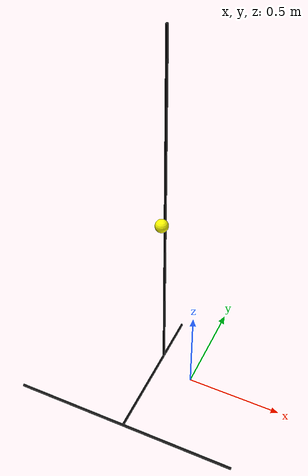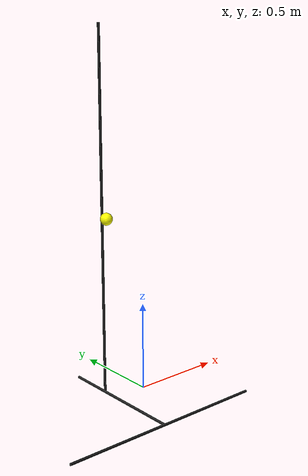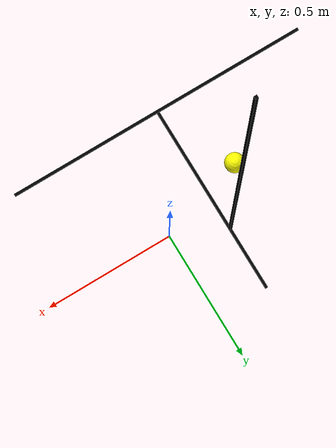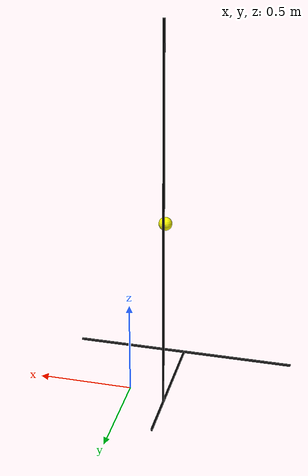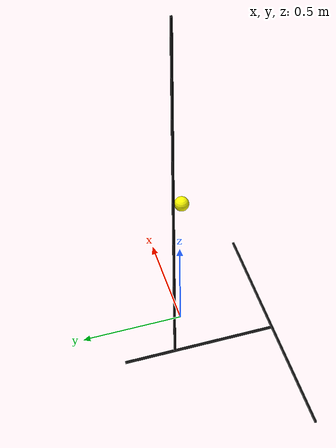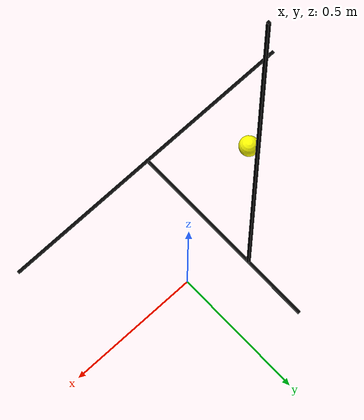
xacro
<?xml version="1.0"?>
<robot xmlns:xacro="http://www.ros.org/wiki/xacro"  name="tennis_ball">

  <!-- Material Definition -->
  <material name="yellow">
    <color rgba="1 1 0 1"/>
  </material>

  <material name="black">
    <color rgba="0 0 0 1"/>
  </material>

  <link name="world">
  </link>

  <link name="base_link">
    <origin xyz="0 0 0" rpy="0 0 0"/>
    <visual>
      <geometry>
        <box size="1.2 0.01 0.01"/>
      </geometry>
      <material name="black"/>
    </visual>
    <collision>
      <geometry>
        <box size="1.2 0.01 0.01"/>
      </geometry>
    </collision>
    <inertial>
      <mass value="10"/>
      <origin rpy="0 0 0" xyz="0 0 0"/>
      <inertia ixx="0.008333333333" ixy="0" ixz="0" iyy="0.0.06041666667" iyz="0" izz="0.0.06041666667"/>
    </inertial>
  </link>

  <!-- The cylindrical robot -->
  <link name="theta_link">
    <visual>
      <origin xyz="0 0.380 0" rpy="0 0 0"/>
      <geometry>
        <box size="0.01 0.75 0.01"/>
      </geometry>
      <material name="black"/>
    </visual>

    <collision>
      <origin xyz="0 0 0" rpy="0 0 0"/>
      <geometry>
        <box size="0.01 0.75 0.01"/>
      </geometry>
    </collision>

    <inertial>
      <mass value="0.5"/>
      <origin rpy="0 0 0" xyz="0 0 0"/>
      <inertia ixx="0.0.06041666667" ixy="0" ixz="0" iyy="0.0008333333333" iyz="0" izz="0.0.06041666667"/>
    </inertial>
  </link>

  <link name="r_link">
    <visual>
      <origin xyz="0 0 0" rpy="0 0 0"/>
      <geometry>
        <box size="0.01 0.01 2.0"/>
      </geometry>
      <material name="black"/>
    </visual>

    <collision>
      <origin xyz="0 0 0" rpy="0 0 0"/>
      <geometry>
        <box size="0.01 0.01 2.0"/>
      </geometry>
    </collision>

    <inertial>
      <mass value="0.5"/>
      <origin rpy="0 0 0" xyz="0 0 0"/>
      <inertia ixx="0.0.06041666667" ixy="0" ixz="0" iyy="0.0.06041666667" iyz="0" izz="0.0008333333333"/>
    </inertial>
  </link>

  <link name="z_link">
    <visual>
      <origin xyz="0 0 0" rpy="0 0 0"/>
      <geometry>
        <box size="0.01 0.01 0.01"/>
      </geometry>
      <material name="black"/>
    </visual>

    <collision>
      <origin xyz="0 0 0" rpy="0 0 0"/>
      <geometry>
        <box size="0.01 0.01 0.01"/>
      </geometry>
    </collision>

    <inertial>
      <mass value="0.5"/>
      <origin rpy="0 0 0" xyz="0 0 0"/>
      <inertia ixx="0.0.008333333333" ixy="0" ixz="0" iyy="0.0008333333333" iyz="0" izz="0.0.008333333333"/>
    </inertial>
  </link>

  <!-- Link Definition -->
  <link name="ball">
    <visual>
      <origin xyz="0 0 0" rpy="0 0 0"/>
      <geometry>
        <sphere radius="0.033"/>
      </geometry>
      <material name="yellow"/>
    </visual>
    <collision>
      <origin xyz="0 0 0" rpy="0 0 0"/>
      <geometry>
        <sphere radius="0.033"/>
      </geometry>
    </collision>
    <inertial>
      <origin xyz="0 0 0" rpy="0 0 0"/>
      <mass value="1"/>
      <inertia ixx="0.001" ixy="0" ixz="0" iyy="0.001" iyz="0" izz="0.001"/>
    </inertial>
  </link>

  <!-- Joints  -->
  <joint name="world_to_base_link_joint" type="fixed">
      <origin xyz="-0.2 -0.415 0.005" rpy="0 0 0"/>
      <parent link="world"/>
      <child link="base_link"/>
  </joint>

  <joint name="theta_joint" type="revolute">
      <axis xyz="0 0 1"/>
      <origin xyz="0 0 0" rpy="0 0 0"/>
      <parent link="base_link"/>
      <child link="theta_link"/>
      <limit effort="50" velocity="0.01" lower="-1.5707" upper="1.5707"/>
      <dynamics damping="100.0" friction="100.0"/>
  </joint>

  <joint name="r_joint" type="prismatic">
      <origin xyz="0 0.505 1.005" rpy="0 0 0"/>
      <parent link="theta_link"/>
      <child link="r_link"/>
      <axis xyz="0 1 0"/>
      <limit effort="50" velocity="0.01" lower="-0.35" upper="0.1"/>
      <dynamics damping="100.0" friction="100.0"/>
  </joint>

  <joint name="z_joint" type="prismatic">
      <origin xyz="0 -0.005 0" rpy="0 0 0"/>
      <parent link="r_link"/>
      <child link="z_link"/>
      <axis xyz="0 0 1"/>
      <limit effort="50" velocity="0.01" lower="-0.2" upper="0.75"/>
      <dynamics damping="100.0" friction="100.0"/>
  </joint>

  <joint name="fixed_joint" type="fixed">
      <origin xyz="0 -0.033 0" rpy="0 0 0"/>
      <parent link="z_link"/>
      <child link="ball"/>
  </joint>

  <xacro:include filename="gazebo_plugin_cylindrical.xacro" />

</robot>

<!-- ros2 topic pub -1 /set_joint_trajectory trajectory_msgs/msg/JointTrajectory  '{header: {frame_id: world}, joint_names: [theta_joint, r_joint, z_joint], points: [{positions: {1.0,0.3,0.3}]}' -->
